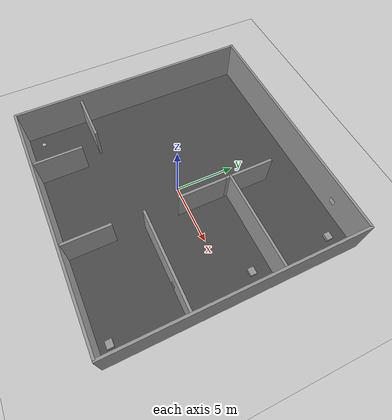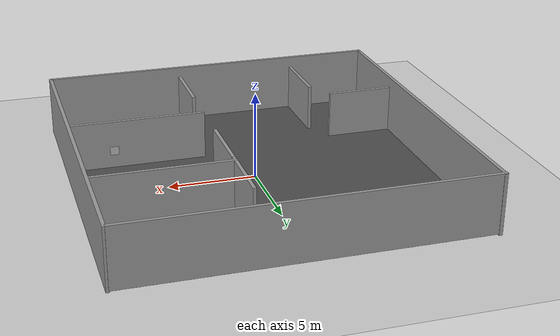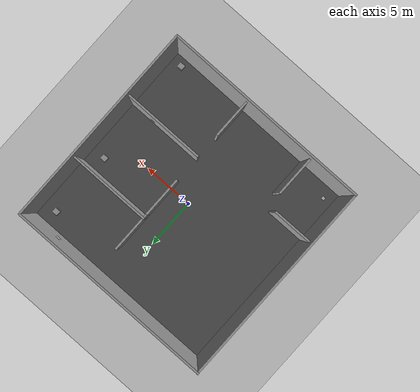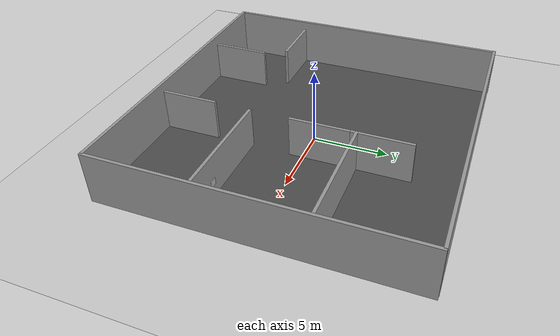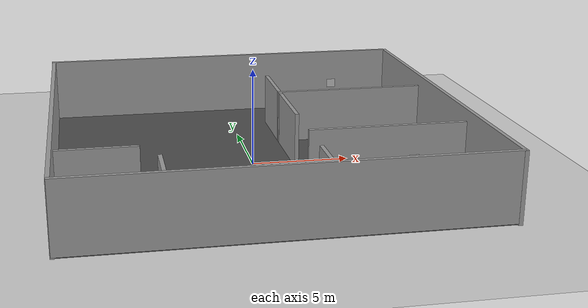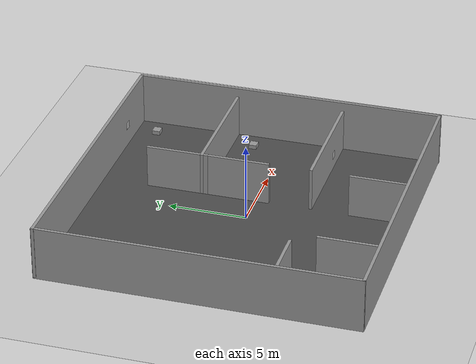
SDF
<sdf version="1.7">
 <world name="default">
  <scene><shadows>0</shadows><ambient>0.4 0.4 0.4 1</ambient><background>0.7 0.7 0.7 1</background></scene>
  <physics type="ode">
   <ode>
    <solver>
     <type>quick</type>
     <iters>20</iters>
     <sor>1</sor>
     <use_dynamic_moi_rescaling>0</use_dynamic_moi_rescaling>
    </solver>
    <constraints>
     <cfm>0</cfm>
     <erp>0.2</erp>
     <contact_max_correcting_vel>100</contact_max_correcting_vel>
     <contact_surface_layer>0</contact_surface_layer>
    </constraints>
   </ode>
   <real_time_update_rate>1000</real_time_update_rate>
   <max_step_size>0.001</max_step_size>
   <real_time_factor>1</real_time_factor>
  </physics>
  <light name="sun" type="directional">
   <pose>0 0 10 0 -0 0</pose>
   <diffuse>0.8 0.8 0.8 1</diffuse>
   <specular>0.2 0.2 0.2 1</specular>
   <attenuation>
    <range>1000</range>
    <constant>0.9</constant>
    <linear>0.01</linear>
    <quadratic>0.001</quadratic>
   </attenuation>
   <direction>-0.5 0.1 -0.9</direction>
   <spot><inner_angle>0</inner_angle><outer_angle>0</outer_angle><falloff>0</falloff></spot>
  </light>
  <model name="ground_plane">
   <static>1</static>
   <link name="link">
    <collision name="collision">
     <geometry><plane><normal>0 0 1</normal><size>100 100</size></plane></geometry>
     <surface>
      <contact><collide_bitmask>65535</collide_bitmask></contact>
      <friction><ode><mu>100</mu><mu2>50</mu2></ode></friction>
     </surface>
    </collision>
    <visual name="visual">
     <cast_shadows>0</cast_shadows>
     <geometry><plane><normal>0 0 1</normal><size>100 100</size></plane></geometry>
     <material>
      <script><uri>file://media/materials/scripts/gazebo.material</uri><name>Gazebo/Grey</name></script>
     </material>
    </visual>
   </link>
  </model>
  <model name="floor">
   <static>1</static>
   <link name="link">
    <collision name="collision"><geometry><box><size>200 200 0.1</size></box></geometry></collision>
    <visual name="visual">
     <cast_shadows>0</cast_shadows>
     <geometry><box><size>20 20 0.1</size></box></geometry>
     <material>
      <script>
       <uri>model://floor/materials/scripts</uri>
       <uri>model://floor/materials/textures</uri>
       <name>vrc/asphalt</name>
      </script>
     </material>
    </visual>
   </link>
   <pose>0.037938 0.065821 0 0 -0 0</pose>
  </model>
  <gravity>0 0 -9.81</gravity>
  <magnetic_field>6e-06 2.3e-05 -4.2e-05</magnetic_field>
  <atmosphere type="adiabatic"/>
  <spherical_coordinates>
   <surface_model>EARTH_WGS84</surface_model>
   <latitude_deg>0</latitude_deg>
   <longitude_deg>0</longitude_deg>
   <elevation>0</elevation>
   <heading_deg>0</heading_deg>
  </spherical_coordinates>
  <model name="wall1">
   <link name="link">
    <pose>0.818345 -0.266251 1.75379 0 -0 0</pose>
    <inertial>
     <inertia><ixx>0</ixx><ixy>0</ixy><ixz>0</ixz><iyy>0</iyy><iyz>0</iyz><izz>0</izz></inertia>
     <mass>0</mass>
    </inertial>
    <visual name="visual">
     <cast_shadows>0</cast_shadows>
     <geometry><box><size>20.2009 0.2 3.39717</size></box></geometry>
     <material>
      <script>
       <uri>model://w1/materials/scripts</uri>
       <uri>model://w1/materials/textures</uri>
       <name>vrc/grey_wall</name>
      </script>
      <shader type="pixel"/>
     </material>
    </visual>
    <collision name="collision">
     <geometry><box><size>20.2009 0.2 3.39717</size></box></geometry>
     <surface>
      <friction>
       <ode><mu>1</mu><mu2>1</mu2><fdir1>0 0 0</fdir1><slip1>0</slip1><slip2>0</slip2></ode>
       <torsional>
        <coefficient>1</coefficient>
        <patch_radius>0</patch_radius>
        <surface_radius>0</surface_radius>
        <use_patch_radius>1</use_patch_radius>
        <ode><slip>0</slip></ode>
       </torsional>
      </friction>
      <bounce><restitution_coefficient>0</restitution_coefficient><threshold>1e+06</threshold></bounce>
      <contact>
       <collide_without_contact>0</collide_without_contact>
       <collide_without_contact_bitmask>1</collide_without_contact_bitmask>
       <collide_bitmask>1</collide_bitmask>
       <ode>
        <soft_cfm>0</soft_cfm>
        <soft_erp>0.2</soft_erp>
        <kp>1e+13</kp>
        <kd>1</kd>
        <max_vel>0.01</max_vel>
        <min_depth>0</min_depth>
       </ode>
       <bullet>
        <split_impulse>1</split_impulse>
        <split_impulse_penetration_threshold>-0.01</split_impulse_penetration_threshold>
        <soft_cfm>0</soft_cfm>
        <soft_erp>0.2</soft_erp>
        <kp>1e+13</kp>
        <kd>1</kd>
       </bullet>
      </contact>
     </surface>
    </collision>
   </link>
   <static>1</static>
   <pose>-0.803903 -9.67167 0 0 -0 0</pose>
  </model>
  <model name="wall1_clone">
   <link name="link">
    <pose>0.818345 -0.266251 1.75379 0 -0 0</pose>
    <inertial>
     <inertia><ixx>0</ixx><ixy>0</ixy><ixz>0</ixz><iyy>0</iyy><iyz>0</iyz><izz>0</izz></inertia>
     <mass>0</mass>
    </inertial>
    <visual name="visual">
     <cast_shadows>0</cast_shadows>
     <geometry><box><size>20.2009 0.2 3.39717</size></box></geometry>
     <material>
      <script>
       <uri>model://w1/materials/scripts</uri>
       <uri>model://w1/materials/textures</uri>
       <name>vrc/grey_wall</name>
      </script>
      <shader type="pixel"/>
     </material>
    </visual>
    <collision name="collision">
     <geometry><box><size>20.2009 0.2 3.39717</size></box></geometry>
     <surface>
      <friction>
       <ode><mu>1</mu><mu2>1</mu2><fdir1>0 0 0</fdir1><slip1>0</slip1><slip2>0</slip2></ode>
       <torsional>
        <coefficient>1</coefficient>
        <patch_radius>0</patch_radius>
        <surface_radius>0</surface_radius>
        <use_patch_radius>1</use_patch_radius>
        <ode><slip>0</slip></ode>
       </torsional>
      </friction>
      <bounce><restitution_coefficient>0</restitution_coefficient><threshold>1e+06</threshold></bounce>
      <contact>
       <collide_without_contact>0</collide_without_contact>
       <collide_without_contact_bitmask>1</collide_without_contact_bitmask>
       <collide_bitmask>1</collide_bitmask>
       <ode>
        <soft_cfm>0</soft_cfm>
        <soft_erp>0.2</soft_erp>
        <kp>1e+13</kp>
        <kd>1</kd>
        <max_vel>0.01</max_vel>
        <min_depth>0</min_depth>
       </ode>
       <bullet>
        <split_impulse>1</split_impulse>
        <split_impulse_penetration_threshold>-0.01</split_impulse_penetration_threshold>
        <soft_cfm>0</soft_cfm>
        <soft_erp>0.2</soft_erp>
        <kp>1e+13</kp>
        <kd>1</kd>
       </bullet>
      </contact>
     </surface>
    </collision>
   </link>
   <static>1</static>
   <pose>-0.885045 9.83374 3.50573 -3.14159 0 0</pose>
  </model>
  <model name="grey_wall_4">
   <link name="link">
    <pose>-2.18549 -0.260349 1.4 0 -0 0</pose>
    <inertial>
     <inertia><ixx>0</ixx><ixy>0</ixy><ixz>0</ixz><iyy>0</iyy><iyz>0</iyz><izz>0</izz></inertia>
     <mass>0</mass>
    </inertial>
    <visual name="visual">
     <cast_shadows>0</cast_shadows>
     <geometry><box><size>20.2211 0.2 4.07666</size></box></geometry>
     <material>
      <script>
       <uri>model://w4/materials/scripts</uri>
       <uri>model://w4/materials/textures</uri>
       <name>vrc/grey_wall</name>
      </script>
      <shader type="pixel"/>
     </material>
    </visual>
    <collision name="collision">
     <geometry><box><size>20.2211 0.2 4.07666</size></box></geometry>
     <surface>
      <friction>
       <ode><mu>1</mu><mu2>1</mu2><fdir1>0 0 0</fdir1><slip1>0</slip1><slip2>0</slip2></ode>
       <torsional>
        <coefficient>1</coefficient>
        <patch_radius>0</patch_radius>
        <surface_radius>0</surface_radius>
        <use_patch_radius>1</use_patch_radius>
        <ode><slip>0</slip></ode>
       </torsional>
      </friction>
      <bounce><restitution_coefficient>0</restitution_coefficient><threshold>1e+06</threshold></bounce>
      <contact>
       <collide_without_contact>0</collide_without_contact>
       <collide_without_contact_bitmask>1</collide_without_contact_bitmask>
       <collide_bitmask>1</collide_bitmask>
       <ode>
        <soft_cfm>0</soft_cfm>
        <soft_erp>0.2</soft_erp>
        <kp>1e+13</kp>
        <kd>1</kd>
        <max_vel>0.01</max_vel>
        <min_depth>0</min_depth>
       </ode>
       <bullet>
        <split_impulse>1</split_impulse>
        <split_impulse_penetration_threshold>-0.01</split_impulse_penetration_threshold>
        <soft_cfm>0</soft_cfm>
        <soft_erp>0.2</soft_erp>
        <kp>1e+13</kp>
        <kd>1</kd>
       </bullet>
      </contact>
     </surface>
    </collision>
   </link>
   <link name="link_clone">
    <pose>-2.11028 19.875 1.4 0 -0 -3.14035</pose>
    <inertial>
     <inertia><ixx>0</ixx><ixy>0</ixy><ixz>0</ixz><iyy>0</iyy><iyz>0</iyz><izz>0</izz></inertia>
     <mass>0</mass>
    </inertial>
    <visual name="visual">
     <cast_shadows>0</cast_shadows>
     <geometry><box><size>20.2211 0.2 4.07666</size></box></geometry>
     <material>
      <script>
       <uri>model://w4/materials/scripts</uri>
       <uri>model://w4/materials/textures</uri>
       <name>vrc/grey_wall</name>
      </script>
      <shader type="pixel"/>
     </material>
    </visual>
    <collision name="collision">
     <geometry><box><size>20.2211 0.2 4.07666</size></box></geometry>
     <surface>
      <friction>
       <ode><mu>1</mu><mu2>1</mu2><fdir1>0 0 0</fdir1><slip1>0</slip1><slip2>0</slip2></ode>
       <torsional>
        <coefficient>1</coefficient>
        <patch_radius>0</patch_radius>
        <surface_radius>0</surface_radius>
        <use_patch_radius>1</use_patch_radius>
        <ode><slip>0</slip></ode>
       </torsional>
      </friction>
      <bounce><restitution_coefficient>0</restitution_coefficient><threshold>1e+06</threshold></bounce>
      <contact>
       <collide_without_contact>0</collide_without_contact>
       <collide_without_contact_bitmask>1</collide_without_contact_bitmask>
       <collide_bitmask>1</collide_bitmask>
       <ode>
        <soft_cfm>0</soft_cfm>
        <soft_erp>0.2</soft_erp>
        <kp>1e+13</kp>
        <kd>1</kd>
        <max_vel>0.01</max_vel>
        <min_depth>0</min_depth>
       </ode>
       <bullet>
        <split_impulse>1</split_impulse>
        <split_impulse_penetration_threshold>-0.01</split_impulse_penetration_threshold>
        <soft_cfm>0</soft_cfm>
        <soft_erp>0.2</soft_erp>
        <kp>1e+13</kp>
        <kd>1</kd>
       </bullet>
      </contact>
     </surface>
    </collision>
   </link>
   <static>1</static>
   <pose>-9.76922 -2.07662 0 0 0 -1.56895</pose>
  </model>
  <model name="grey_wall_3_clone">
   <static>1</static>
   <link name="link">
    <pose>0 0 1.4 0 -0 0</pose>
    <collision name="collision"><geometry><box><size>8 0.2 2.8</size></box></geometry></collision>
    <visual name="visual">
     <cast_shadows>0</cast_shadows>
     <geometry><box><size>8 0.2 2.8</size></box></geometry>
     <material>
      <script>
       <uri>model://w3/materials/scripts</uri>
       <uri>model://w3/materials/textures</uri>
       <name>vrc/grey_wall</name>
      </script>
     </material>
    </visual>
   </link>
   <pose>5.99077 3.47983 0.03934 0 -0 0</pose>
  </model>
  <model name="grey_wall">
   <static>1</static>
   <link name="link">
    <pose>0 0 1.4 0 -0 0</pose>
    <collision name="collision"><geometry><box><size>4 0.2 2.8</size></box></geometry></collision>
    <visual name="visual">
     <cast_shadows>0</cast_shadows>
     <geometry><box><size>4 0.2 2.8</size></box></geometry>
     <material>
      <script>
       <uri>model://w2/materials/scripts</uri>
       <uri>model://w2/materials/textures</uri>
       <name>vrc/grey_wall</name>
      </script>
     </material>
    </visual>
   </link>
   <pose>2.08995 5.08478 0.03806 0 0 -1.57</pose>
  </model>
  <model name="grey_wall_clone">
   <static>1</static>
   <link name="link">
    <pose>0 0 1.4 0 -0 0</pose>
    <collision name="collision"><geometry><box><size>4 0.2 2.8</size></box></geometry></collision>
    <visual name="visual">
     <cast_shadows>0</cast_shadows>
     <geometry><box><size>4 0.2 2.8</size></box></geometry>
     <material>
      <script>
       <uri>model://w2/materials/scripts</uri>
       <uri>model://w2/materials/textures</uri>
       <name>vrc/grey_wall</name>
      </script>
     </material>
    </visual>
   </link>
   <pose>2.09581 1.10132 0.03394 0 0 -1.57</pose>
  </model>
  <model name="grey_wall_clone_clone">
   <static>1</static>
   <link name="link">
    <pose>0 0 1.4 0 -0 0</pose>
    <collision name="collision"><geometry><box><size>4 0.2 2.8</size></box></geometry></collision>
    <visual name="visual">
     <cast_shadows>0</cast_shadows>
     <geometry><box><size>4 0.2 2.8</size></box></geometry>
     <material>
      <script>
       <uri>model://w2/materials/scripts</uri>
       <uri>model://w2/materials/textures</uri>
       <name>vrc/grey_wall</name>
      </script>
     </material>
    </visual>
   </link>
   <pose>2.09325 -8.03711 0.04478 0 0 -1.57</pose>
  </model>
  <model name="unit_box_clone">
   <pose>8.63118 2.00096 0.185517 0 -0 8.4e-05</pose>
   <link name="link">
    <inertial>
     <mass>1</mass>
     <inertia>
      <ixx>0.166667</ixx>
      <ixy>0</ixy>
      <ixz>0</ixz>
      <iyy>0.166667</iyy>
      <iyz>0</iyz>
      <izz>0.166667</izz>
     </inertia>
    </inertial>
    <collision name="collision">
     <geometry><box><size>0.564377 0.513351 0.271033</size></box></geometry>
    </collision>
    <visual name="visual">
     <geometry><box><size>0.564377 0.513351 0.271033</size></box></geometry>
     <material>
      <script><name>Gazebo/Grey</name><uri>file://media/materials/scripts/gazebo.material</uri></script>
     </material>
    </visual>
   </link>
  </model>
  <model name="unit_box_clone_clone">
   <pose>8.98166 -9.06627 0.185517 -3e-06 -2e-06 -0.00074</pose>
   <link name="link">
    <inertial>
     <mass>1</mass>
     <inertia>
      <ixx>0.166667</ixx>
      <ixy>0</ixy>
      <ixz>0</ixz>
      <iyy>0.166667</iyy>
      <iyz>0</iyz>
      <izz>0.166667</izz>
     </inertia>
    </inertial>
    <collision name="collision">
     <geometry><box><size>0.564377 0.513351 0.271033</size></box></geometry>
    </collision>
    <visual name="visual">
     <geometry><box><size>0.564377 0.513351 0.271033</size></box></geometry>
     <material>
      <script><name>Gazebo/Grey</name><uri>file://media/materials/scripts/gazebo.material</uri></script>
     </material>
    </visual>
   </link>
  </model>
  <model name="grey_wall_3_clone_clone">
   <static>1</static>
   <link name="link">
    <pose>0 0 1.4 0 -0 0</pose>
    <collision name="collision"><geometry><box><size>8 0.2 2.8</size></box></geometry></collision>
    <visual name="visual">
     <cast_shadows>0</cast_shadows>
     <geometry><box><size>8 0.2 2.8</size></box></geometry>
     <material>
      <script>
       <uri>model://w3/materials/scripts</uri>
       <uri>model://w3/materials/textures</uri>
       <name>vrc/grey_wall</name>
      </script>
     </material>
    </visual>
   </link>
   <pose>6.06548 -3.57956 0.04195 0 -0 0</pose>
  </model>
  <model name="marker10_8cm">
   <static>1</static>
   <link name="marker">
    <inertial>
     <mass>0.1</mass>
     <inertia><ixx>0</ixx><ixy>0</ixy><ixz>0</ixz><iyy>0</iyy><iyz>0</iyz><izz>0</izz></inertia>
    </inertial>
    <visual name="visual">
     <geometry><box><size>0.5 0.5 0.005</size></box></geometry>
     <material>
      <script>
       <uri>model://marker10_8cm/material/scripts</uri>
       <uri>model://marker10_8cm/material/textures</uri>
       <name>Aruco/marker10_8cm</name>
      </script>
     </material>
    </visual>
    <collision name="collision"><geometry><box><size>0.5 0.5 0.05</size></box></geometry></collision>
    <self_collide>1</self_collide>
   </link>
   <pose>7.41343 -3.45415 1.07928 -1.5708 3e-06 -0.001189</pose>
  </model>
  <model name="marker20_8cm">
   <static>1</static>
   <link name="marker">
    <inertial>
     <mass>0.1</mass>
     <inertia><ixx>0</ixx><ixy>0</ixy><ixz>0</ixz><iyy>0</iyy><iyz>0</iyz><izz>0</izz></inertia>
    </inertial>
    <visual name="visual">
     <geometry><box><size>0.5 0.5 0.005</size></box></geometry>
     <material>
      <script>
       <uri>model://marker20_8cm/material/scripts</uri>
       <uri>model://marker20_8cm/material/textures</uri>
       <name>Aruco/marker20_8cm</name>
      </script>
     </material>
    </visual>
    <collision name="collision"><geometry><box><size>0.5 0.5 0.05</size></box></geometry></collision>
    <self_collide>1</self_collide>
   </link>
   <pose>6.67683 9.97442 1.46992 1.57077 -4e-06 -0.000148</pose>
  </model>
  <model name="marker26_8cm">
   <static>1</static>
   <link name="marker">
    <inertial>
     <mass>0.1</mass>
     <inertia><ixx>0</ixx><ixy>0</ixy><ixz>0</ixz><iyy>0</iyy><iyz>0</iyz><izz>0</izz></inertia>
    </inertial>
    <visual name="visual">
     <geometry><box><size>0.5 0.5 0.005</size></box></geometry>
     <material>
      <script>
       <uri>model://marker26_8cm/material/scripts</uri>
       <uri>model://marker26_8cm/material/textures</uri>
       <name>Aruco/marker26_8cm</name>
      </script>
     </material>
    </visual>
    <collision name="collision"><geometry><box><size>0.5 0.5 0.05</size></box></geometry></collision>
    <self_collide>1</self_collide>
   </link>
   <pose>7.38434 -3.70481 1.05923 1.57082 -2e-06 0.00031</pose>
  </model>
  <model name="marker60_8cm">
   <static>1</static>
   <link name="marker">
    <inertial>
     <mass>0.1</mass>
     <inertia><ixx>0</ixx><ixy>0</ixy><ixz>0</ixz><iyy>0</iyy><iyz>0</iyz><izz>0</izz></inertia>
    </inertial>
    <visual name="visual">
     <geometry><box><size>0.02 0.3 0.3</size></box></geometry>
     <material>
      <script>
       <uri>model://marker60_8cm/material/scripts</uri>
       <uri>model://marker60_8cm/material/textures</uri>
       <name>Aruco/marker60_8cm</name>
      </script>
     </material>
    </visual>
    <collision name="collision"><geometry><box><size>0.02 0.3 0.3</size></box></geometry></collision>
    <self_collide>1</self_collide>
   </link>
   <pose>-9.01902 -8.75638 0.04403 0 1.56984 0</pose>
  </model>
  <model name="unit_box_clone_clone_0">
   <pose>8.65971 8.65003 0.185517 0 -0 0.0024</pose>
   <link name="link">
    <inertial>
     <mass>1</mass>
     <inertia>
      <ixx>0.166667</ixx>
      <ixy>0</ixy>
      <ixz>0</ixz>
      <iyy>0.166667</iyy>
      <iyz>0</iyz>
      <izz>0.166667</izz>
     </inertia>
    </inertial>
    <collision name="collision">
     <geometry><box><size>0.564377 0.513351 0.271033</size></box></geometry>
    </collision>
    <visual name="visual">
     <geometry><box><size>0.564377 0.513351 0.271033</size></box></geometry>
     <material>
      <script><name>Gazebo/Grey</name><uri>file://media/materials/scripts/gazebo.material</uri></script>
     </material>
    </visual>
   </link>
  </model>
  <model name="marker50_8cm">
   <static>1</static>
   <link name="marker">
    <inertial>
     <mass>0.1</mass>
     <inertia><ixx>0</ixx><ixy>0</ixy><ixz>0</ixz><iyy>0</iyy><iyz>0</iyz><izz>0</izz></inertia>
    </inertial>
    <visual name="visual">
     <geometry><box><size>0.02 0.4 0.4</size></box></geometry>
     <material>
      <script>
       <uri>model://marker50_8cm/material/scripts</uri>
       <uri>model://marker50_8cm/material/textures</uri>
       <name>Aruco/marker50_8cm</name>
      </script>
     </material>
    </visual>
    <collision name="collision"><geometry><box><size>0.02 0.4 0.4</size></box></geometry></collision>
    <self_collide>1</self_collide>
   </link>
   <pose>3.43794 -3.20085 0.023924 3.14159 -1.57079 3.14159</pose>
  </model>
  <model name="wall1_0">
   <model name="grey_wall">
    <static>1</static>
    <link name="link">
     <pose>0 0 1.4 0 -0 0</pose>
     <collision name="collision"><geometry><box><size>4 0.2 2.8</size></box></geometry></collision>
     <visual name="visual">
      <cast_shadows>0</cast_shadows>
      <geometry><box><size>4 0.2 2.8</size></box></geometry>
      <material>
       <script>
        <uri>model://w2/materials/scripts</uri>
        <uri>model://w2/materials/textures</uri>
        <name>vrc/grey_wall</name>
       </script>
      </material>
     </visual>
    </link>
    <pose>-1.39664 1.70247 0 0 -0 0.003798</pose>
   </model>
   <model name="grey_wall_0">
    <static>1</static>
    <link name="link">
     <pose>0 0 1.4 0 -0 0</pose>
     <collision name="collision"><geometry><box><size>4 0.2 2.8</size></box></geometry></collision>
     <visual name="visual">
      <cast_shadows>0</cast_shadows>
      <geometry><box><size>4 0.2 2.8</size></box></geometry>
      <material>
       <script>
        <uri>model://w2/materials/scripts</uri>
        <uri>model://w2/materials/textures</uri>
        <name>vrc/grey_wall</name>
       </script>
      </material>
     </visual>
    </link>
    <pose>1.39663 -1.70247 0 0 0 -1.57112</pose>
   </model>
   <static>0</static>
   <pose>-6.63931 -6.19443 0 0 -0 0</pose>
  </model>
 </world>
</sdf>
